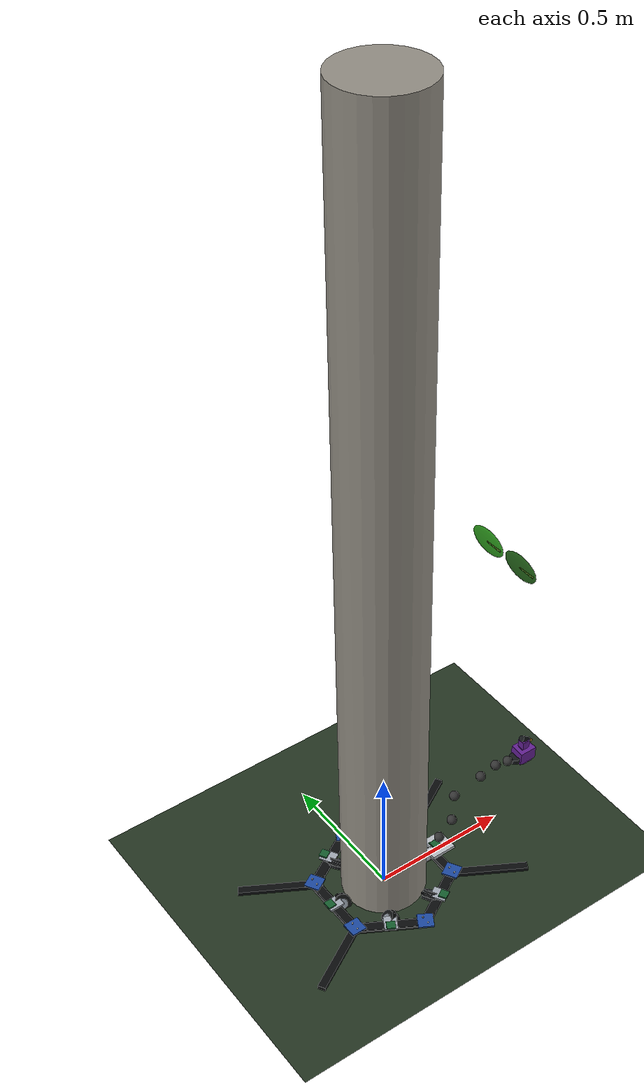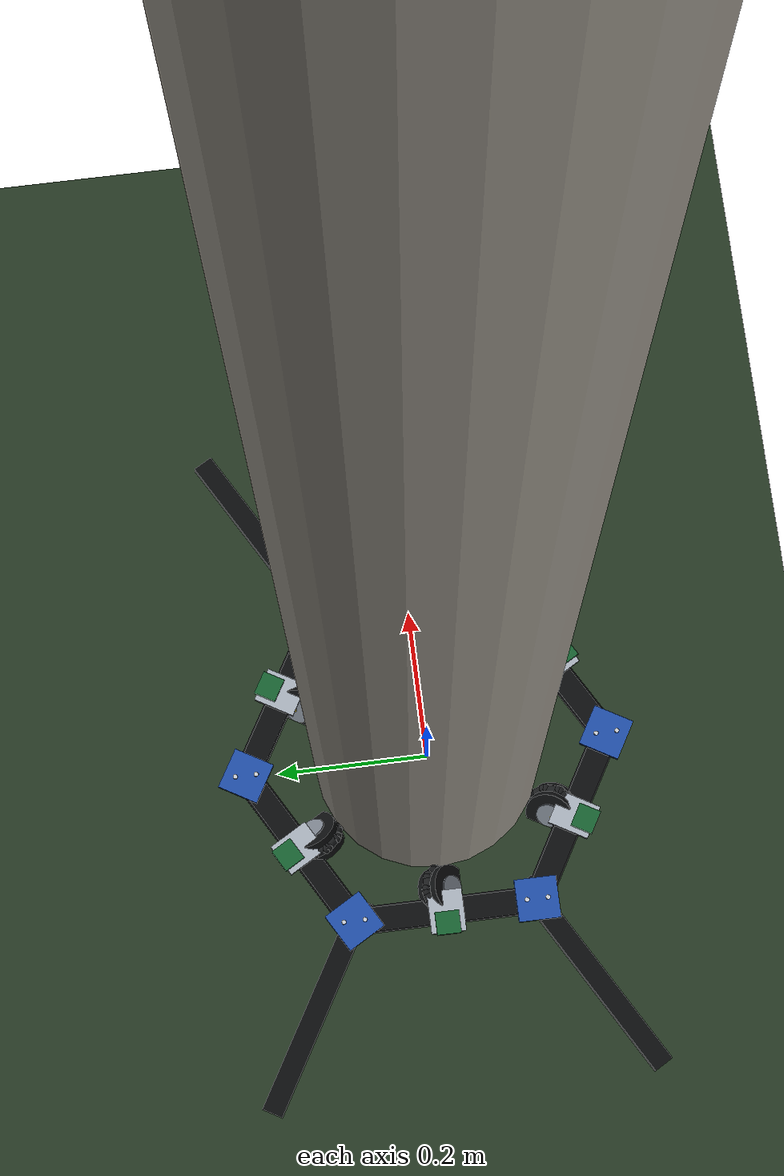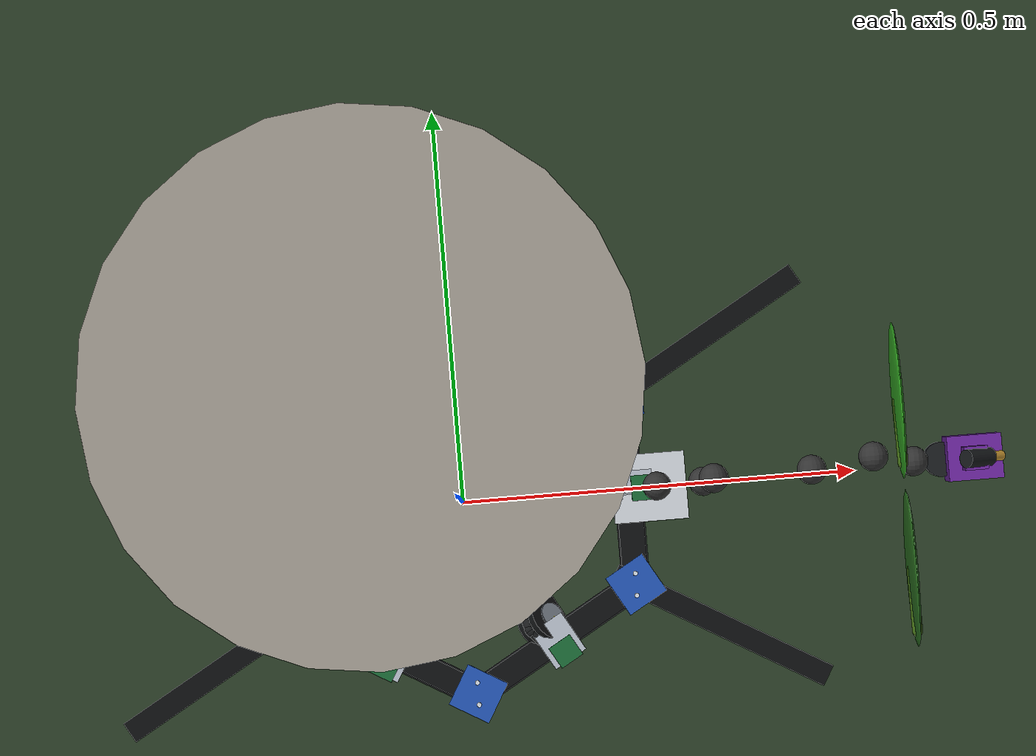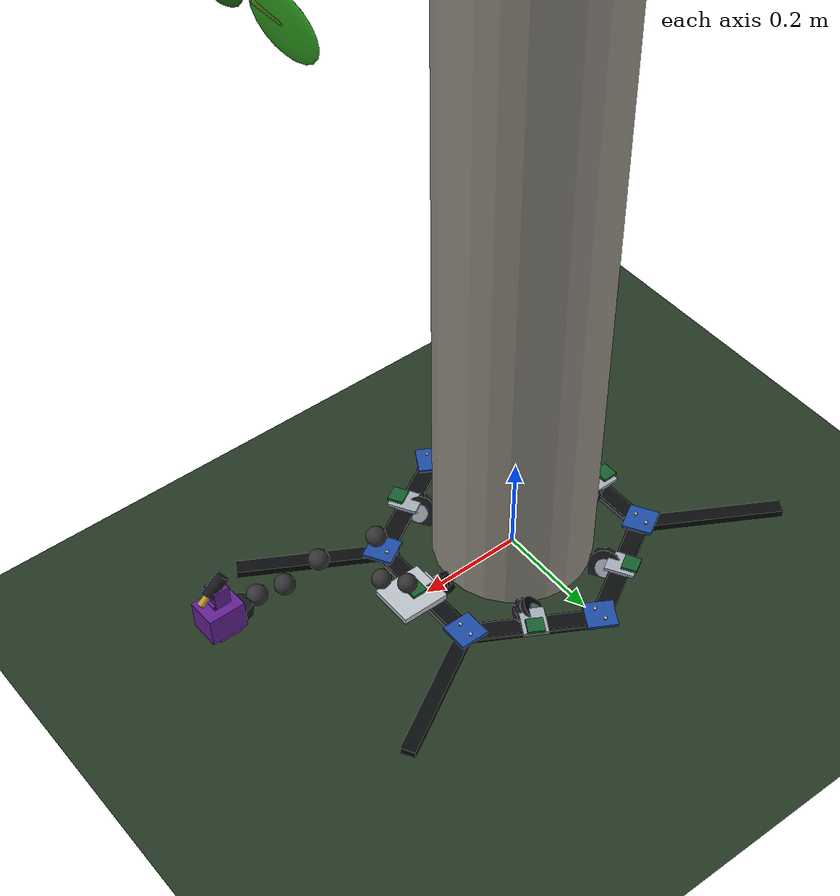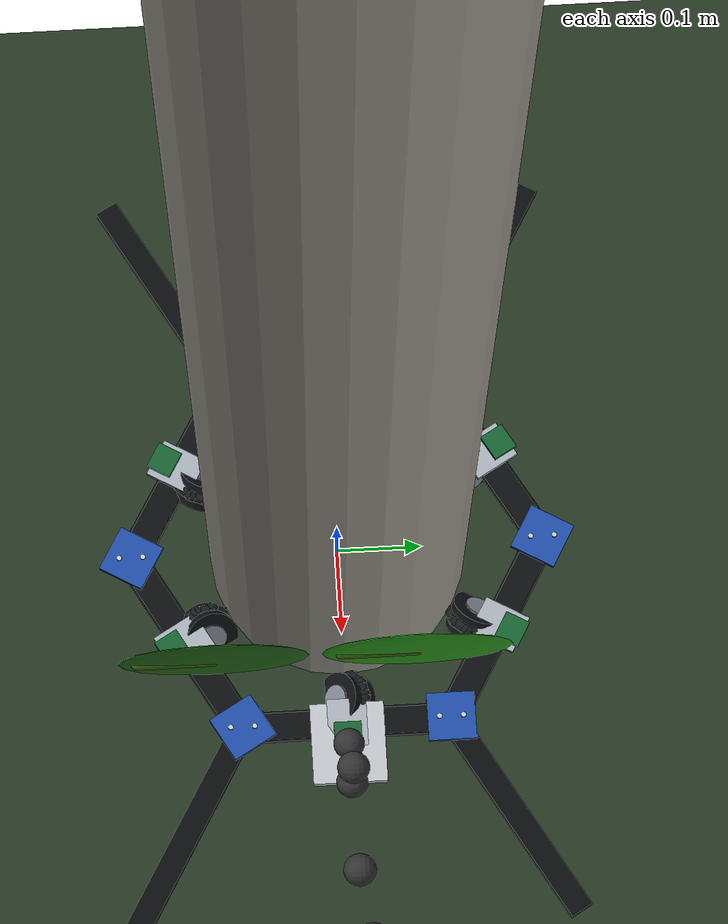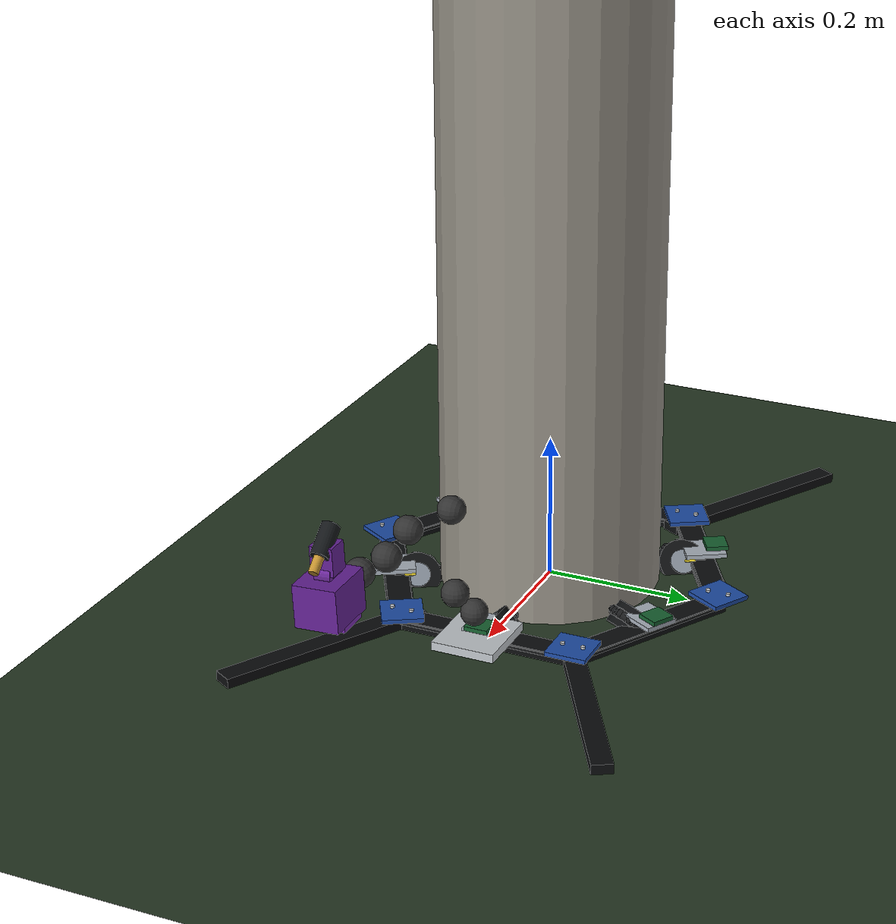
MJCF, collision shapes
<?xml version='1.0' encoding='utf-8'?>
<mujoco model="palmclimber_single_ring_so101_six_axis_extension">
  <!--SO101 CAD: Apache-2.0. Custom sixth positioning axis, scissors/nozzle, single-ring clamp and omni drive.-->
  <compiler angle="radian" autolimits="true" meshdir="so101/assets" />
  <option timestep="0.002" gravity="0 0 -9.81" integrator="implicitfast" iterations="80" />
  <visual>
    <global offwidth="1280" offheight="960" />
    <headlight diffuse=".65 .65 .65" ambient=".32 .32 .32" specular=".12 .12 .12" />
  </visual>
  <default>
    <default class="so101_new_calib">
      <joint damping="1" frictionloss="0.1" armature="0.005" />
      <position kp="50" />
      <default class="visual">
        <geom type="mesh" contype="0" conaffinity="0" group="2" />
      </default>
      <default class="collision">
        <geom group="3" />
      </default>
    </default>
  </default>
  <default>
    <default class="sts3215">
      <geom contype="0" conaffinity="0" />
      <joint damping="0.60" frictionloss="0.052" armature="0.028" />
      <position kp="998.22" kv="2.731" forcerange="-2.94 2.94" />
    </default>
    <default class="backlash">
      <joint damping="0.01" frictionloss="0" armature="0.01" limited="true" range="-0.008726646259971648 0.008726646259971648" />
    </default>
  </default>
  <default>
    <geom friction="0.7 0.005 0.0001" solref="0.012 1" solimp="0.95 0.99 0.002" />
  </default>
  <asset>
    <mesh file="waveshare_mounting_plate_so101_v2.stl" />
    <mesh file="sts3215_03a_v1.stl" />
    <mesh file="motor_holder_so101_base_v1.stl" />
    <mesh file="wrist_roll_follower_so101_v1.stl" />
    <mesh file="moving_jaw_so101_v1.stl" />
    <mesh file="base_motor_holder_so101_v1.stl" />
    <mesh file="upper_arm_so101_v1.stl" />
    <mesh file="wrist_roll_pitch_so101_v2.stl" />
    <mesh file="under_arm_so101_v1.stl" />
    <mesh file="rotation_pitch_so101_v1.stl" />
    <mesh file="motor_holder_so101_wrist_v1.stl" />
    <mesh file="sts3215_03a_no_horn_v1.stl" />
    <mesh file="base_so101_v2.stl" />
    <material name="base_motor_holder_so101_v1_material" rgba="0.68 0.72 0.76 1" />
    <material name="base_so101_v2_material" rgba="0.68 0.72 0.76 1" />
    <material name="sts3215_03a_v1_material" rgba="0.075 0.08 0.09 1" />
    <material name="waveshare_mounting_plate_so101_v2_material" rgba="0.68 0.72 0.76 1" />
    <material name="motor_holder_so101_base_v1_material" rgba="0.68 0.72 0.76 1" />
    <material name="rotation_pitch_so101_v1_material" rgba="0.68 0.72 0.76 1" />
    <material name="upper_arm_so101_v1_material" rgba="0.075 0.08 0.09 1" />
    <material name="under_arm_so101_v1_material" rgba="0.075 0.08 0.09 1" />
    <material name="motor_holder_so101_wrist_v1_material" rgba="0.68 0.72 0.76 1" />
    <material name="sts3215_03a_no_horn_v1_material" rgba="0.075 0.08 0.09 1" />
    <material name="wrist_roll_pitch_so101_v2_material" rgba="0.68 0.72 0.76 1" />
    <material name="wrist_roll_follower_so101_v1_material" rgba="0.68 0.72 0.76 1" />
    <material name="moving_jaw_so101_v1_material" rgba="0.68 0.72 0.76 1" />
    <texture type="skybox" builtin="gradient" rgb1=".70 .79 .86" rgb2=".96 .97 .98" width="512" height="1536" />
    <texture name="ground" type="2d" builtin="checker" width="128" height="128" rgb1="0.12 0.19 0.12" rgb2="0.18 0.25 0.16" />
    <material name="ground_mat" texture="ground" texrepeat="12 12" />
    <texture name="bark" type="2d" builtin="flat" mark="random" random="0.035" width="256" height="512" rgb1="0.58 0.56 0.52" markrgb="0.31 0.29 0.25" />
    <material name="bark_mat" texture="bark" texrepeat="7 3" specular="0.05" />
    <mesh name="custom_scissor_blade" vertex="0 -0.006 -0.002 0.08 -0.003 -0.002 0.091 0 -0.002 0.08 0.003 -0.002 0 0.009 -0.002 0 -0.006 0.002 0.08 -0.003 0.002 0.091 0 0.002 0.08 0.003 0.002 0 0.009 0.002" face="0 1 2 0 2 3 0 3 4 5 7 6 5 8 7 5 9 8 0 5 6 0 6 1 1 6 7 1 7 2 2 7 8 2 8 3 3 8 9 3 9 4 4 9 5 4 5 0" />
  </asset>
  <worldbody>
    <light pos="2 -3 4" dir="-0.2 0.4 -1" diffuse="0.9 0.9 0.85" ambient="0.20 0.20 0.20" />
    <light pos="-2 1 2" dir="1 -0.5 -0.2" diffuse="0.45 0.45 0.50" />
    <geom name="floor" type="plane" size="4 4 .1" material="ground_mat" contype="1" conaffinity="2" />
    <geom name="tree" type="cylinder" size=".15 1.5" pos="0 0 1.5" material="bark_mat" contype="1" conaffinity="2" />
    <camera name="overview" pos="1.65 -2.05 1.7" xyaxes=".779 .627 0 -.181 .225 .957" />
    <body name="leaf_target" mocap="true" pos=".44 0 1.3">
      <geom name="target_leaf" type="ellipsoid" size=".004 .075 .045" pos="0 .035 0" rgba=".17 .59 .11 1" contype="0" conaffinity="0" />
      <geom type="capsule" fromto="0 -.025 0 0 .035 0" size=".005" rgba=".24 .40 .07 1" contype="0" conaffinity="0" />
    </body>
    <body name="protected_leaf" mocap="true" pos=".44 -.16 1.3">
      <geom name="protected_leaf_geom" type="ellipsoid" size=".004 .075 .045" pos="0 .035 0" rgba=".14 .39 .10 1" contype="0" conaffinity="0" />
      <geom type="capsule" fromto="0 -.025 0 0 .035 0" size=".005" rgba=".24 .40 .07 1" contype="0" conaffinity="0" />
    </body>
    <body name="height_carriage">
      <joint name="base_height" type="slide" axis="0 0 1" range=".25 2.4" damping=".15" armature=".01" />
      <inertial pos="0 0 0" mass=".04" diaginertia=".001 .001 .001" />
      <body name="azimuth_carriage">
        <joint name="base_azimuth" type="hinge" axis="0 0 1" limited="false" damping=".08" frictionloss=".025" armature=".004" />
        <inertial pos="0 0 0" mass=".04" diaginertia=".001 .001 .002" />
        <body name="roll_support">
          <joint name="base_roll" type="hinge" axis="1 0 0" range="-.18 .18" damping="1.1" frictionloss="2.05" armature=".004" solreflimit=".025 1" solreffriction=".004 1" solimpfriction=".9999 .9999 .001" />
          <inertial pos="0 0 0" mass=".04" diaginertia=".002 .002 .002" />
          <body name="climber_root">
            <joint name="base_pitch" type="hinge" axis="0 1 0" range="-.18 .18" damping="1.1" frictionloss="2.05" armature=".004" solreflimit=".025 1" solreffriction=".004 1" solimpfriction=".9999 .9999 .001" />
            <inertial pos="-.025 0 0" mass="2.4" diaginertia=".060 .060 .10" />
            <geom name="frame_rail_0" type="box" size="0.1215 0.016 0.012" pos="0.105222087 0.18225 0" euler="0 0 2.61799388" rgba=".045 .05 .055 1" contype="0" conaffinity="0" />
            <geom type="box" size="0.1215 0.018 0.002" pos="0.105222087 0.18225 -0.009" euler="0 0 2.61799388" rgba=".08 .085 .09 1" contype="0" conaffinity="0" />
            <geom type="box" size="0.1215 0.018 0.002" pos="0.105222087 0.18225 0.009" euler="0 0 2.61799388" rgba=".08 .085 .09 1" contype="0" conaffinity="0" />
            <geom type="box" size=".028 .028 .003" pos="0.210444173 0.1215 0.016" euler="0 0 0" rgba=".12 .30 .65 1" contype="0" conaffinity="0" />
            <geom type="cylinder" size=".003 .002" pos="0.210444173 0.1075 0.02" rgba=".78 .80 .83 1" contype="0" conaffinity="0" />
            <geom type="cylinder" size=".003 .002" pos="0.210444173 0.1355 0.02" rgba=".78 .80 .83 1" contype="0" conaffinity="0" />
            <geom type="box" size=".15 .014 .012" pos="0.314367222 0.1815 0" euler="0 0 0.523598776" rgba=".04 .045 .05 1" contype="0" conaffinity="0" />
            <geom name="frame_rail_1" type="box" size="0.1215 0.016 0.012" pos="-0.105222087 0.18225 0" euler="0 0 -2.61799388" rgba=".045 .05 .055 1" contype="0" conaffinity="0" />
            <geom type="box" size="0.1215 0.018 0.002" pos="-0.105222087 0.18225 -0.009" euler="0 0 -2.61799388" rgba=".08 .085 .09 1" contype="0" conaffinity="0" />
            <geom type="box" size="0.1215 0.018 0.002" pos="-0.105222087 0.18225 0.009" euler="0 0 -2.61799388" rgba=".08 .085 .09 1" contype="0" conaffinity="0" />
            <geom type="box" size=".028 .028 .003" pos="1.48794586e-17 0.243 0.016" euler="0 0 1.04719755" rgba=".12 .30 .65 1" contype="0" conaffinity="0" />
            <geom type="cylinder" size=".003 .002" pos="1.48794586e-17 0.229 0.02" rgba=".78 .80 .83 1" contype="0" conaffinity="0" />
            <geom type="cylinder" size=".003 .002" pos="1.48794586e-17 0.257 0.02" rgba=".78 .80 .83 1" contype="0" conaffinity="0" />
            <geom name="frame_rail_2" type="box" size="0.1215 0.016 0.012" pos="-0.210444173 7.63278329e-17 0" euler="0 0 -1.57079633" rgba=".045 .05 .055 1" contype="0" conaffinity="0" />
            <geom type="box" size="0.1215 0.018 0.002" pos="-0.210444173 7.63278329e-17 -0.009" euler="0 0 -1.57079633" rgba=".08 .085 .09 1" contype="0" conaffinity="0" />
            <geom type="box" size="0.1215 0.018 0.002" pos="-0.210444173 7.63278329e-17 0.009" euler="0 0 -1.57079633" rgba=".08 .085 .09 1" contype="0" conaffinity="0" />
            <geom type="box" size=".028 .028 .003" pos="-0.210444173 0.1215 0.016" euler="0 0 2.0943951" rgba=".12 .30 .65 1" contype="0" conaffinity="0" />
            <geom type="cylinder" size=".003 .002" pos="-0.210444173 0.1075 0.02" rgba=".78 .80 .83 1" contype="0" conaffinity="0" />
            <geom type="cylinder" size=".003 .002" pos="-0.210444173 0.1355 0.02" rgba=".78 .80 .83 1" contype="0" conaffinity="0" />
            <geom type="box" size=".15 .014 .012" pos="-0.314367222 0.1815 0" euler="0 0 2.61799388" rgba=".04 .045 .05 1" contype="0" conaffinity="0" />
            <geom name="frame_rail_3" type="box" size="0.1215 0.016 0.012" pos="-0.105222087 -0.18225 0" euler="0 0 -0.523598776" rgba=".045 .05 .055 1" contype="0" conaffinity="0" />
            <geom type="box" size="0.1215 0.018 0.002" pos="-0.105222087 -0.18225 -0.009" euler="0 0 -0.523598776" rgba=".08 .085 .09 1" contype="0" conaffinity="0" />
            <geom type="box" size="0.1215 0.018 0.002" pos="-0.105222087 -0.18225 0.009" euler="0 0 -0.523598776" rgba=".08 .085 .09 1" contype="0" conaffinity="0" />
            <geom type="box" size=".028 .028 .003" pos="-0.210444173 -0.1215 0.016" euler="0 0 3.14159265" rgba=".12 .30 .65 1" contype="0" conaffinity="0" />
            <geom type="cylinder" size=".003 .002" pos="-0.210444173 -0.1355 0.02" rgba=".78 .80 .83 1" contype="0" conaffinity="0" />
            <geom type="cylinder" size=".003 .002" pos="-0.210444173 -0.1075 0.02" rgba=".78 .80 .83 1" contype="0" conaffinity="0" />
            <geom type="box" size=".15 .014 .012" pos="-0.314367222 -0.1815 0" euler="0 0 3.66519143" rgba=".04 .045 .05 1" contype="0" conaffinity="0" />
            <geom name="frame_rail_4" type="box" size="0.1215 0.016 0.012" pos="0.105222087 -0.18225 0" euler="0 0 0.523598776" rgba=".045 .05 .055 1" contype="0" conaffinity="0" />
            <geom type="box" size="0.1215 0.018 0.002" pos="0.105222087 -0.18225 -0.009" euler="0 0 0.523598776" rgba=".08 .085 .09 1" contype="0" conaffinity="0" />
            <geom type="box" size="0.1215 0.018 0.002" pos="0.105222087 -0.18225 0.009" euler="0 0 0.523598776" rgba=".08 .085 .09 1" contype="0" conaffinity="0" />
            <geom type="box" size=".028 .028 .003" pos="-4.46383758e-17 -0.243 0.016" euler="0 0 4.1887902" rgba=".12 .30 .65 1" contype="0" conaffinity="0" />
            <geom type="cylinder" size=".003 .002" pos="-4.46383758e-17 -0.257 0.02" rgba=".78 .80 .83 1" contype="0" conaffinity="0" />
            <geom type="cylinder" size=".003 .002" pos="-4.46383758e-17 -0.229 0.02" rgba=".78 .80 .83 1" contype="0" conaffinity="0" />
            <geom name="frame_rail_5" type="box" size="0.1215 0.016 0.012" pos="0.210444173 3.46944695e-17 0" euler="0 0 1.57079633" rgba=".045 .05 .055 1" contype="0" conaffinity="0" />
            <geom type="box" size="0.1215 0.018 0.002" pos="0.210444173 3.46944695e-17 -0.009" euler="0 0 1.57079633" rgba=".08 .085 .09 1" contype="0" conaffinity="0" />
            <geom type="box" size="0.1215 0.018 0.002" pos="0.210444173 3.46944695e-17 0.009" euler="0 0 1.57079633" rgba=".08 .085 .09 1" contype="0" conaffinity="0" />
            <geom type="box" size=".028 .028 .003" pos="0.210444173 -0.1215 0.016" euler="0 0 5.23598776" rgba=".12 .30 .65 1" contype="0" conaffinity="0" />
            <geom type="cylinder" size=".003 .002" pos="0.210444173 -0.1355 0.02" rgba=".78 .80 .83 1" contype="0" conaffinity="0" />
            <geom type="cylinder" size=".003 .002" pos="0.210444173 -0.1075 0.02" rgba=".78 .80 .83 1" contype="0" conaffinity="0" />
            <geom type="box" size=".15 .014 .012" pos="0.314367222 -0.1815 0" euler="0 0 5.75958653" rgba=".04 .045 .05 1" contype="0" conaffinity="0" />
            <body name="wheel1" pos="0.182 0 0">
              <joint name="wheel1_spin" type="hinge" axis="0 -0.707106781 0.707106781" limited="false" damping=".004" armature=".0005" />
              <inertial pos="0 0 0" mass=".065" diaginertia=".00005 .00005 .00005" />
              <geom type="cylinder" size=".032 .016" quat="0.923879533 0.382683432 0 0" rgba=".05 .055 .06 1" contype="0" conaffinity="0" />
              <geom type="cylinder" size=".017 .018" quat="0.923879533 0.382683432 0 0" rgba=".50 .53 .57 1" contype="0" conaffinity="0" />
              <geom type="capsule" fromto="0.029 -0.00777817459 -0.00777817459 0.029 0.00777817459 0.00777817459" size=".007" rgba=".10 .105 .11 1" contype="0" conaffinity="0" />
              <geom type="capsule" fromto="0.0299271306 0.00576050576 0.00576050576 0.0169958551 0.0183458566 0.0183458566" size=".007" rgba=".10 .105 .11 1" contype="0" conaffinity="0" />
              <geom type="capsule" fromto="0.0194231145 0.0170988687 0.0170988687 -0.00150012884 0.021906045 0.021906045" size=".007" rgba=".10 .105 .11 1" contype="0" conaffinity="0" />
              <geom type="capsule" fromto="0.00150012884 0.021906045 0.021906045 -0.0194231145 0.0170988687 0.0170988687" size=".007" rgba=".10 .105 .11 1" contype="0" conaffinity="0" />
              <geom type="capsule" fromto="-0.0169958551 0.0183458566 0.0183458566 -0.0299271306 0.00576050576 0.00576050576" size=".007" rgba=".10 .105 .11 1" contype="0" conaffinity="0" />
              <geom type="capsule" fromto="-0.029 0.00777817459 0.00777817459 -0.029 -0.00777817459 -0.00777817459" size=".007" rgba=".10 .105 .11 1" contype="0" conaffinity="0" />
              <geom type="capsule" fromto="-0.0299271306 -0.00576050576 -0.00576050576 -0.0169958551 -0.0183458566 -0.0183458566" size=".007" rgba=".10 .105 .11 1" contype="0" conaffinity="0" />
              <geom type="capsule" fromto="-0.0194231145 -0.0170988687 -0.0170988687 0.00150012884 -0.021906045 -0.021906045" size=".007" rgba=".10 .105 .11 1" contype="0" conaffinity="0" />
              <geom type="capsule" fromto="-0.00150012884 -0.021906045 -0.021906045 0.0194231145 -0.0170988687 -0.0170988687" size=".007" rgba=".10 .105 .11 1" contype="0" conaffinity="0" />
              <geom type="capsule" fromto="0.0169958551 -0.0183458566 -0.0183458566 0.0299271306 -0.00576050576 -0.00576050576" size=".007" rgba=".10 .105 .11 1" contype="0" conaffinity="0" />
              <geom name="wheel1_rotation_mark_-1" type="capsule" fromto="0.004 0.0134350288 -0.0134350288 0.016 0.0134350288 -0.0134350288" size=".0018" rgba=".92 .83 .18 1" contype="0" conaffinity="0" />
              <geom name="wheel1_rotation_mark_1" type="capsule" fromto="0.004 -0.0134350288 0.0134350288 0.016 -0.0134350288 0.0134350288" size=".0018" rgba=".92 .83 .18 1" contype="0" conaffinity="0" />
            </body>
            <site name="traction1" pos="0.15 0 0" size=".002" rgba="0 0 0 0" />
            <geom type="box" size=".028 .023 .003" pos="0.213 0 0.023" euler="0 0 0" rgba=".66 .69 .73 1" contype="0" conaffinity="0" />
            <geom type="box" size=".015 .016 .003" pos="0.229 0 0.031" euler="0 0 0" rgba=".09 .38 .19 1" contype="0" conaffinity="0" />
            <body name="wheel2" pos="0.091 0.157616623 0">
              <joint name="wheel2_spin" type="hinge" axis="0.612372436 -0.353553391 -0.707106781" limited="false" damping=".004" armature=".0005" />
              <inertial pos="0 0 0" mass=".065" diaginertia=".00005 .00005 .00005" />
              <geom type="cylinder" size=".032 .016" quat="0.382683432 0.461939766 0.800103145 0" rgba=".05 .055 .06 1" contype="0" conaffinity="0" />
              <geom type="cylinder" size=".017 .018" quat="0.382683432 0.461939766 0.800103145 0" rgba=".50 .53 .57 1" contype="0" conaffinity="0" />
              <geom type="capsule" fromto="0.00776390321 0.029003824 -0.00777817459 0.0212360968 0.0212256494 0.00777817459" size=".007" rgba=".10 .105 .11 1" contype="0" conaffinity="0" />
              <geom type="capsule" fromto="0.0199523096 0.0230374025 0.00576050576 0.0243859054 0.00554591393 0.0183458566" size=".007" rgba=".10 .105 .11 1" contype="0" conaffinity="0" />
              <geom type="capsule" fromto="0.0245196119 0.00827147624 0.0170988687 0.018221127 -0.0122521722 0.021906045" size=".007" rgba=".10 .105 .11 1" contype="0" conaffinity="0" />
              <geom type="capsule" fromto="0.0197212559 -0.0096538728 0.021906045 0.00509649742 -0.0253703449 0.0170988687" size=".007" rgba=".10 .105 .11 1" contype="0" conaffinity="0" />
              <geom type="capsule" fromto="0.00739005036 -0.0238917706 0.0183458566 -0.00997482098 -0.0287979083 0.00576050576" size=".007" rgba=".10 .105 .11 1" contype="0" conaffinity="0" />
              <geom type="capsule" fromto="-0.00776390321 -0.029003824 0.00777817459 -0.0212360968 -0.0212256494 -0.00777817459" size=".007" rgba=".10 .105 .11 1" contype="0" conaffinity="0" />
              <geom type="capsule" fromto="-0.0199523096 -0.0230374025 -0.00576050576 -0.0243859054 -0.00554591393 -0.0183458566" size=".007" rgba=".10 .105 .11 1" contype="0" conaffinity="0" />
              <geom type="capsule" fromto="-0.0245196119 -0.00827147624 -0.0170988687 -0.018221127 0.0122521722 -0.021906045" size=".007" rgba=".10 .105 .11 1" contype="0" conaffinity="0" />
              <geom type="capsule" fromto="-0.0197212559 0.0096538728 -0.021906045 -0.00509649742 0.0253703449 -0.0170988687" size=".007" rgba=".10 .105 .11 1" contype="0" conaffinity="0" />
              <geom type="capsule" fromto="-0.00739005036 0.0238917706 -0.0183458566 0.00997482098 0.0287979083 -0.00576050576" size=".007" rgba=".10 .105 .11 1" contype="0" conaffinity="0" />
              <geom name="wheel2_rotation_mark_-1" type="capsule" fromto="-0.00963507628 0.010181616 0.0134350288 -0.00363507628 0.0205739209 0.0134350288" size=".0018" rgba=".92 .83 .18 1" contype="0" conaffinity="0" />
              <geom name="wheel2_rotation_mark_1" type="capsule" fromto="0.0136350763 -0.00325341281 -0.0134350288 0.0196350763 0.00713889204 -0.0134350288" size=".0018" rgba=".92 .83 .18 1" contype="0" conaffinity="0" />
            </body>
            <site name="traction2" pos="0.075 0.129903811 0" size=".002" rgba="0 0 0 0" />
            <geom type="box" size=".028 .023 .003" pos="0.1065 0.184463411 0.023" euler="0 0 1.04719755" rgba=".66 .69 .73 1" contype="0" conaffinity="0" />
            <geom type="box" size=".015 .016 .003" pos="0.1145 0.198319817 0.031" euler="0 0 1.04719755" rgba=".09 .38 .19 1" contype="0" conaffinity="0" />
            <body name="wheel3" pos="-0.091 0.157616623 0">
              <joint name="wheel3_spin" type="hinge" axis="0.612372436 0.353553391 0.707106781" limited="false" damping=".004" armature=".0005" />
              <inertial pos="0 0 0" mass=".065" diaginertia=".00005 .00005 .00005" />
              <geom type="cylinder" size=".032 .016" quat="0.923879533 -0.191341716 0.331413574 0" rgba=".05 .055 .06 1" contype="0" conaffinity="0" />
              <geom type="cylinder" size=".017 .018" quat="0.923879533 -0.191341716 0.331413574 0" rgba=".50 .53 .57 1" contype="0" conaffinity="0" />
              <geom type="capsule" fromto="-0.00776390321 0.029003824 -0.00777817459 -0.0212360968 0.0212256494 0.00777817459" size=".007" rgba=".10 .105 .11 1" contype="0" conaffinity="0" />
              <geom type="capsule" fromto="-0.0199523096 0.0230374025 0.00576050576 -0.0243859054 0.00554591393 0.0183458566" size=".007" rgba=".10 .105 .11 1" contype="0" conaffinity="0" />
              <geom type="capsule" fromto="-0.0245196119 0.00827147624 0.0170988687 -0.018221127 -0.0122521722 0.021906045" size=".007" rgba=".10 .105 .11 1" contype="0" conaffinity="0" />
              <geom type="capsule" fromto="-0.0197212559 -0.0096538728 0.021906045 -0.00509649742 -0.0253703449 0.0170988687" size=".007" rgba=".10 .105 .11 1" contype="0" conaffinity="0" />
              <geom type="capsule" fromto="-0.00739005036 -0.0238917706 0.0183458566 0.00997482098 -0.0287979083 0.00576050576" size=".007" rgba=".10 .105 .11 1" contype="0" conaffinity="0" />
              <geom type="capsule" fromto="0.00776390321 -0.029003824 0.00777817459 0.0212360968 -0.0212256494 -0.00777817459" size=".007" rgba=".10 .105 .11 1" contype="0" conaffinity="0" />
              <geom type="capsule" fromto="0.0199523096 -0.0230374025 -0.00576050576 0.0243859054 -0.00554591393 -0.0183458566" size=".007" rgba=".10 .105 .11 1" contype="0" conaffinity="0" />
              <geom type="capsule" fromto="0.0245196119 -0.00827147624 -0.0170988687 0.018221127 0.0122521722 -0.021906045" size=".007" rgba=".10 .105 .11 1" contype="0" conaffinity="0" />
              <geom type="capsule" fromto="0.0197212559 0.0096538728 -0.021906045 0.00509649742 0.0253703449 -0.0170988687" size=".007" rgba=".10 .105 .11 1" contype="0" conaffinity="0" />
              <geom type="capsule" fromto="0.00739005036 0.0238917706 -0.0183458566 -0.00997482098 0.0287979083 -0.00576050576" size=".007" rgba=".10 .105 .11 1" contype="0" conaffinity="0" />
              <geom name="wheel3_rotation_mark_-1" type="capsule" fromto="-0.0136350763 -0.00325341281 -0.0134350288 -0.0196350763 0.00713889204 -0.0134350288" size=".0018" rgba=".92 .83 .18 1" contype="0" conaffinity="0" />
              <geom name="wheel3_rotation_mark_1" type="capsule" fromto="0.00963507628 0.010181616 0.0134350288 0.00363507628 0.0205739209 0.0134350288" size=".0018" rgba=".92 .83 .18 1" contype="0" conaffinity="0" />
            </body>
            <site name="traction3" pos="-0.075 0.129903811 0" size=".002" rgba="0 0 0 0" />
            <geom type="box" size=".028 .023 .003" pos="-0.1065 0.184463411 0.023" euler="0 0 2.0943951" rgba=".66 .69 .73 1" contype="0" conaffinity="0" />
            <geom type="box" size=".015 .016 .003" pos="-0.1145 0.198319817 0.031" euler="0 0 2.0943951" rgba=".09 .38 .19 1" contype="0" conaffinity="0" />
            <body name="wheel4" pos="-0.182 2.22885717e-17 0">
              <joint name="wheel4_spin" type="hinge" axis="8.65956056e-17 0.707106781 -0.707106781" limited="false" damping=".004" armature=".0005" />
              <inertial pos="0 0 0" mass=".065" diaginertia=".00005 .00005 .00005" />
              <geom type="cylinder" size=".032 .016" quat="0.382683432 -0.923879533 1.13142611e-16 0" rgba=".05 .055 .06 1" contype="0" conaffinity="0" />
              <geom type="cylinder" size=".017 .018" quat="0.382683432 -0.923879533 1.13142611e-16 0" rgba=".50 .53 .57 1" contype="0" conaffinity="0" />
              <geom type="capsule" fromto="-0.029 -0.00777817459 -0.00777817459 -0.029 0.00777817459 0.00777817459" size=".007" rgba=".10 .105 .11 1" contype="0" conaffinity="0" />
              <geom type="capsule" fromto="-0.0299271306 0.00576050576 0.00576050576 -0.0169958551 0.0183458566 0.0183458566" size=".007" rgba=".10 .105 .11 1" contype="0" conaffinity="0" />
              <geom type="capsule" fromto="-0.0194231145 0.0170988687 0.0170988687 0.00150012884 0.021906045 0.021906045" size=".007" rgba=".10 .105 .11 1" contype="0" conaffinity="0" />
              <geom type="capsule" fromto="-0.00150012884 0.021906045 0.021906045 0.0194231145 0.0170988687 0.0170988687" size=".007" rgba=".10 .105 .11 1" contype="0" conaffinity="0" />
              <geom type="capsule" fromto="0.0169958551 0.0183458566 0.0183458566 0.0299271306 0.00576050576 0.00576050576" size=".007" rgba=".10 .105 .11 1" contype="0" conaffinity="0" />
              <geom type="capsule" fromto="0.029 0.00777817459 0.00777817459 0.029 -0.00777817459 -0.00777817459" size=".007" rgba=".10 .105 .11 1" contype="0" conaffinity="0" />
              <geom type="capsule" fromto="0.0299271306 -0.00576050576 -0.00576050576 0.0169958551 -0.0183458566 -0.0183458566" size=".007" rgba=".10 .105 .11 1" contype="0" conaffinity="0" />
              <geom type="capsule" fromto="0.0194231145 -0.0170988687 -0.0170988687 -0.00150012884 -0.021906045 -0.021906045" size=".007" rgba=".10 .105 .11 1" contype="0" conaffinity="0" />
              <geom type="capsule" fromto="0.00150012884 -0.021906045 -0.021906045 -0.0194231145 -0.0170988687 -0.0170988687" size=".007" rgba=".10 .105 .11 1" contype="0" conaffinity="0" />
              <geom type="capsule" fromto="-0.0169958551 -0.0183458566 -0.0183458566 -0.0299271306 -0.00576050576 -0.00576050576" size=".007" rgba=".10 .105 .11 1" contype="0" conaffinity="0" />
              <geom name="wheel4_rotation_mark_-1" type="capsule" fromto="-0.004 -0.0134350288 0.0134350288 -0.016 -0.0134350288 0.0134350288" size=".0018" rgba=".92 .83 .18 1" contype="0" conaffinity="0" />
              <geom name="wheel4_rotation_mark_1" type="capsule" fromto="-0.004 0.0134350288 -0.0134350288 -0.016 0.0134350288 -0.0134350288" size=".0018" rgba=".92 .83 .18 1" contype="0" conaffinity="0" />
            </body>
            <site name="traction4" pos="-0.15 1.8369702e-17 0" size=".002" rgba="0 0 0 0" />
            <geom type="box" size=".028 .023 .003" pos="-0.213 2.60849768e-17 0.023" euler="0 0 3.14159265" rgba=".66 .69 .73 1" contype="0" conaffinity="0" />
            <geom type="box" size=".015 .016 .003" pos="-0.229 2.80444117e-17 0.031" euler="0 0 3.14159265" rgba=".09 .38 .19 1" contype="0" conaffinity="0" />
            <body name="wheel5" pos="-0.091 -0.157616623 0">
              <joint name="wheel5_spin" type="hinge" axis="-0.612372436 0.353553391 0.707106781" limited="false" damping=".004" armature=".0005" />
              <inertial pos="0 0 0" mass=".065" diaginertia=".00005 .00005 .00005" />
              <geom type="cylinder" size=".032 .016" quat="0.923879533 -0.191341716 -0.331413574 0" rgba=".05 .055 .06 1" contype="0" conaffinity="0" />
              <geom type="cylinder" size=".017 .018" quat="0.923879533 -0.191341716 -0.331413574 0" rgba=".50 .53 .57 1" contype="0" conaffinity="0" />
              <geom type="capsule" fromto="-0.0212360968 -0.0212256494 -0.00777817459 -0.00776390321 -0.029003824 0.00777817459" size=".007" rgba=".10 .105 .11 1" contype="0" conaffinity="0" />
              <geom type="capsule" fromto="-0.00997482098 -0.0287979083 0.00576050576 0.00739005036 -0.0238917706 0.0183458566" size=".007" rgba=".10 .105 .11 1" contype="0" conaffinity="0" />
              <geom type="capsule" fromto="0.00509649742 -0.0253703449 0.0170988687 0.0197212559 -0.0096538728 0.021906045" size=".007" rgba=".10 .105 .11 1" contype="0" conaffinity="0" />
              <geom type="capsule" fromto="0.018221127 -0.0122521722 0.021906045 0.0245196119 0.00827147624 0.0170988687" size=".007" rgba=".10 .105 .11 1" contype="0" conaffinity="0" />
              <geom type="capsule" fromto="0.0243859054 0.00554591393 0.0183458566 0.0199523096 0.0230374025 0.00576050576" size=".007" rgba=".10 .105 .11 1" contype="0" conaffinity="0" />
              <geom type="capsule" fromto="0.0212360968 0.0212256494 0.00777817459 0.00776390321 0.029003824 -0.00777817459" size=".007" rgba=".10 .105 .11 1" contype="0" conaffinity="0" />
              <geom type="capsule" fromto="0.00997482098 0.0287979083 -0.00576050576 -0.00739005036 0.0238917706 -0.0183458566" size=".007" rgba=".10 .105 .11 1" contype="0" conaffinity="0" />
              <geom type="capsule" fromto="-0.00509649742 0.0253703449 -0.0170988687 -0.0197212559 0.0096538728 -0.021906045" size=".007" rgba=".10 .105 .11 1" contype="0" conaffinity="0" />
              <geom type="capsule" fromto="-0.018221127 0.0122521722 -0.021906045 -0.0245196119 -0.00827147624 -0.0170988687" size=".007" rgba=".10 .105 .11 1" contype="0" conaffinity="0" />
              <geom type="capsule" fromto="-0.0243859054 -0.00554591393 -0.0183458566 -0.0199523096 -0.0230374025 -0.00576050576" size=".007" rgba=".10 .105 .11 1" contype="0" conaffinity="0" />
              <geom name="wheel5_rotation_mark_-1" type="capsule" fromto="0.00963507628 -0.010181616 -0.0134350288 0.00363507628 -0.0205739209 -0.0134350288" size=".0018" rgba=".92 .83 .18 1" contype="0" conaffinity="0" />
              <geom name="wheel5_rotation_mark_1" type="capsule" fromto="-0.0136350763 0.00325341281 0.0134350288 -0.0196350763 -0.00713889204 0.0134350288" size=".0018" rgba=".92 .83 .18 1" contype="0" conaffinity="0" />
            </body>
            <site name="traction5" pos="-0.075 -0.129903811 0" size=".002" rgba="0 0 0 0" />
            <geom type="box" size=".028 .023 .003" pos="-0.1065 -0.184463411 0.023" euler="0 0 4.1887902" rgba=".66 .69 .73 1" contype="0" conaffinity="0" />
            <geom type="box" size=".015 .016 .003" pos="-0.1145 -0.198319817 0.031" euler="0 0 4.1887902" rgba=".09 .38 .19 1" contype="0" conaffinity="0" />
            <body name="wheel6" pos="0.091 -0.157616623 0">
              <joint name="wheel6_spin" type="hinge" axis="-0.612372436 -0.353553391 -0.707106781" limited="false" damping=".004" armature=".0005" />
              <inertial pos="0 0 0" mass=".065" diaginertia=".00005 .00005 .00005" />
              <geom type="cylinder" size=".032 .016" quat="0.382683432 0.461939766 -0.800103145 0" rgba=".05 .055 .06 1" contype="0" conaffinity="0" />
              <geom type="cylinder" size=".017 .018" quat="0.382683432 0.461939766 -0.800103145 0" rgba=".50 .53 .57 1" contype="0" conaffinity="0" />
              <geom type="capsule" fromto="0.0212360968 -0.0212256494 -0.00777817459 0.00776390321 -0.029003824 0.00777817459" size=".007" rgba=".10 .105 .11 1" contype="0" conaffinity="0" />
              <geom type="capsule" fromto="0.00997482098 -0.0287979083 0.00576050576 -0.00739005036 -0.0238917706 0.0183458566" size=".007" rgba=".10 .105 .11 1" contype="0" conaffinity="0" />
              <geom type="capsule" fromto="-0.00509649742 -0.0253703449 0.0170988687 -0.0197212559 -0.0096538728 0.021906045" size=".007" rgba=".10 .105 .11 1" contype="0" conaffinity="0" />
              <geom type="capsule" fromto="-0.018221127 -0.0122521722 0.021906045 -0.0245196119 0.00827147624 0.0170988687" size=".007" rgba=".10 .105 .11 1" contype="0" conaffinity="0" />
              <geom type="capsule" fromto="-0.0243859054 0.00554591393 0.0183458566 -0.0199523096 0.0230374025 0.00576050576" size=".007" rgba=".10 .105 .11 1" contype="0" conaffinity="0" />
              <geom type="capsule" fromto="-0.0212360968 0.0212256494 0.00777817459 -0.00776390321 0.029003824 -0.00777817459" size=".007" rgba=".10 .105 .11 1" contype="0" conaffinity="0" />
              <geom type="capsule" fromto="-0.00997482098 0.0287979083 -0.00576050576 0.00739005036 0.0238917706 -0.0183458566" size=".007" rgba=".10 .105 .11 1" contype="0" conaffinity="0" />
              <geom type="capsule" fromto="0.00509649742 0.0253703449 -0.0170988687 0.0197212559 0.0096538728 -0.021906045" size=".007" rgba=".10 .105 .11 1" contype="0" conaffinity="0" />
              <geom type="capsule" fromto="0.018221127 0.0122521722 -0.021906045 0.0245196119 -0.00827147624 -0.0170988687" size=".007" rgba=".10 .105 .11 1" contype="0" conaffinity="0" />
              <geom type="capsule" fromto="0.0243859054 -0.00554591393 -0.0183458566 0.0199523096 -0.0230374025 -0.00576050576" size=".007" rgba=".10 .105 .11 1" contype="0" conaffinity="0" />
              <geom name="wheel6_rotation_mark_-1" type="capsule" fromto="0.0136350763 0.00325341281 0.0134350288 0.0196350763 -0.00713889204 0.0134350288" size=".0018" rgba=".92 .83 .18 1" contype="0" conaffinity="0" />
              <geom name="wheel6_rotation_mark_1" type="capsule" fromto="-0.00963507628 -0.010181616 -0.0134350288 -0.00363507628 -0.0205739209 -0.0134350288" size=".0018" rgba=".92 .83 .18 1" contype="0" conaffinity="0" />
            </body>
            <site name="traction6" pos="0.075 -0.129903811 0" size=".002" rgba="0 0 0 0" />
            <geom type="box" size=".028 .023 .003" pos="0.1065 -0.184463411 0.023" euler="0 0 5.23598776" rgba=".66 .69 .73 1" contype="0" conaffinity="0" />
            <geom type="box" size=".015 .016 .003" pos="0.1145 -0.198319817 0.031" euler="0 0 5.23598776" rgba=".09 .38 .19 1" contype="0" conaffinity="0" />
            <geom name="arm_mount_plate" type="box" size=".047 .043 .006" pos=".237 0 .020" rgba=".75 .77 .79 1" contype="0" conaffinity="0" />
            <body name="so101_base" pos=".232 0 .026" quat="1 0 0 0" childclass="so101_new_calib">
              <inertial pos="0.0137179 -5.19711e-05 0.0334843" mass="0.147" fullinertia="0.000114686 0.000136117 0.000130364 -4.59787e-07 4.97151e-06 9.75275e-08" />
              <geom type="mesh" class="visual" pos="-0.00636471 -9.94414e-05 -0.0024" quat="0.5 0.5 0.5 0.5" mesh="base_motor_holder_so101_v1" material="base_motor_holder_so101_v1_material" />
              <geom type="mesh" class="visual" pos="-0.00636471 -8.97657e-09 -0.0024" quat="0.5 0.5 0.5 0.5" mesh="base_so101_v2" material="base_so101_v2_material" />
              <geom type="mesh" class="visual" pos="0.0263353 -8.97657e-09 0.0437" quat="1 -2.85511e-16 -9.64433e-17 6.12908e-16" mesh="sts3215_03a_v1" material="sts3215_03a_v1_material" />
              <geom type="mesh" class="visual" pos="-0.0309827 -0.000199441 0.0474" quat="0.5 0.5 0.5 0.5" mesh="waveshare_mounting_plate_so101_v2" material="waveshare_mounting_plate_so101_v2_material" />
              <site group="3" name="baseframe" pos="8.67362e-19 9.55596e-18 3.46945e-18" quat="1 -8.17396e-19 3.78392e-17 2.22045e-16" />
              <body name="shoulder" pos="0.0388353 -8.97657e-09 0.0624" quat="3.56167e-16 1.22818e-15 -1 -4.14635e-16">
                <joint axis="0 0 1" name="shoulder_yaw" type="hinge" range="-1.9198621771937616 1.9198621771937634" class="sts3215" />
                <inertial pos="-0.0307604 -1.66727e-05 -0.0252713" mass="0.100006" fullinertia="8.3759e-05 8.10403e-05 2.39783e-05 7.55525e-08 -1.16342e-06 1.54663e-07" />
                <geom type="mesh" class="visual" pos="-0.0303992 0.000422241 -0.0417" quat="0.5 0.5 0.5 -0.5" mesh="sts3215_03a_v1" material="sts3215_03a_v1_material" />
                <geom type="mesh" class="visual" pos="-0.0675992 -0.000177759 0.0158499" quat="0.5 0.5 -0.5 0.5" mesh="motor_holder_so101_base_v1" material="motor_holder_so101_base_v1_material" />
                <geom type="mesh" class="visual" pos="0.0122008 2.22413e-05 0.0464" quat="0.707107 -0.707107 -0 8.3163e-34" mesh="rotation_pitch_so101_v1" material="rotation_pitch_so101_v1_material" />
                <body name="upper_arm" pos="-0.0303992 -0.0182778 -0.0542" quat="0.5 -0.5 -0.5 -0.5">
                  <joint axis="0 0 1" name="shoulder_pitch" type="hinge" range="-1.7453292519943224 1.7453292519943366" class="sts3215" />
                  <inertial pos="-0.0898471 -0.00838224 0.0184089" mass="0.103" fullinertia="4.08002e-05 0.000147318 0.000142487 -1.97819e-05 -4.03016e-08 8.97326e-09" />
                  <geom type="mesh" class="visual" pos="-0.11257 -0.0155 0.0187" quat="4.56308e-16 -0.707107 0.707107 -1.37383e-16" mesh="sts3215_03a_v1" material="sts3215_03a_v1_material" />
                  <geom type="mesh" class="visual" pos="-0.065085 0.012 0.0182" quat="0 1 0 0" mesh="upper_arm_so101_v1" material="upper_arm_so101_v1_material" />
                  <body name="lower_arm" pos="-0.11257 -0.028 1.73763e-16" quat="0.707107 -5.98613e-17 -2.58051e-17 0.707107">
                    <joint axis="0 0 1" name="elbow_pitch" type="hinge" range="-1.69 1.69" class="sts3215" />
                    <inertial pos="-0.0980701 0.00324376 0.0182831" mass="0.104" fullinertia="2.87438e-05 0.000159844 0.00014529 7.41152e-06 1.26409e-06 -4.90188e-08" />
                    <geom type="mesh" class="visual" pos="-0.0648499 -0.032 0.0182" quat="0 1 0 0" mesh="under_arm_so101_v1" material="under_arm_so101_v1_material" />
                    <geom type="mesh" class="visual" pos="-0.0648499 -0.032 0.018" quat="3.92687e-16 -1 -1.9186e-15 -6.38378e-16" mesh="motor_holder_so101_wrist_v1" material="motor_holder_so101_wrist_v1_material" />
                    <geom type="mesh" class="visual" pos="-0.1224 0.0052 0.0187" quat="7.21645e-16 1.56949e-15 1 -3.33067e-16" mesh="sts3215_03a_v1" material="sts3215_03a_v1_material" />
                    <body name="wrist" pos="-0.1349 0.0052 3.62355e-17" quat="0.707107 9.58722e-16 -7.51313e-16 -0.707107">
                      <joint axis="0 0 1" name="wrist_pitch" type="hinge" range="-1.6580628494556928 1.6580627293335335" class="sts3215" />
                      <inertial pos="-0.000103312 -0.0386143 0.0281156" mass="0.079" fullinertia="3.68263e-05 2.5391e-05 2.1e-05 1.7893e-08 -5.28128e-08 3.6412e-06" />
                      <geom type="mesh" class="visual" pos="8.32667e-17 -0.0424 0.0306" quat="0.5 0.5 0.5 -0.5" mesh="sts3215_03a_no_horn_v1" material="sts3215_03a_no_horn_v1_material" />
                      <geom type="mesh" class="visual" pos="0 -0.028 0.0181" quat="0.5 -0.5 -0.5 -0.5" mesh="wrist_roll_pitch_so101_v2" material="wrist_roll_pitch_so101_v2_material" />
                      <body name="gripper" pos="5.55112e-17 -0.0611 0.0181" quat="0.0172091 -0.0172091 0.706897 0.706897">
                        <joint axis="0 0 1" name="wrist_roll" type="hinge" range="-2.7438472969992493 2.841206309382605" class="sts3215" />
                        <inertial pos="0.000213627 0.000245138 -0.025187" mass="0.087" fullinertia="2.75087e-05 4.33657e-05 3.45059e-05 -3.35241e-07 -5.7352e-06 -5.17847e-08" />
                        <geom type="mesh" class="visual" pos="0.0077 0.0001 -0.0234" quat="0.707107 -0.707107 1.66015e-15 6.45094e-15" mesh="sts3215_03a_v1" material="sts3215_03a_v1_material" />
                        <geom type="sphere" size=".018" pos="0.000213627 0.000245138 -0.025187" rgba=".2 .2 .2 0" group="4" contype="2" conaffinity="1" />
                        <body name="custom_wrist_yaw" pos="-.0079 -.000218 -.059" quat=".707106781 0 .707106781 0">
                          <joint name="wrist_yaw" type="hinge" axis="0 0 1" range="-1.5 1.5" damping=".6" frictionloss=".03" armature=".006" />
                          <inertial pos=".012 0 0" mass=".055" diaginertia=".00008 .00008 .00008" />
                          <geom type="cylinder" size=".021 .010" rgba=".09 .10 .11 1" contype="2" conaffinity="1" />
                          <body name="tool" pos=".008 0 0">
                            <inertial pos=".039 0 .012" mass=".17" diaginertia=".00025 .0004 .0004" />
                            <geom name="tool_enclosure" type="box" size=".033 .027 .026" pos=".030 0 .012" rgba=".39 .13 .58 1" contype="2" conaffinity="1" />
                            <geom type="cylinder" size=".015 .010" pos=".028 0 .043" euler="1.5708 0 0" rgba=".43 .16 .62 1" contype="0" conaffinity="0" />
                            <geom type="box" size=".020 .027 .003" pos=".029 0 -.016" rgba=".48 .18 .69 1" contype="0" conaffinity="0" />
                            <geom type="box" size=".014 .014 .017" pos=".027 0 .060" rgba=".39 .13 .58 1" contype="0" conaffinity="0" />
                            <geom name="nozzle_motor" type="cylinder" size=".011 .020" pos="0.0285472664 0 0.0797128621" euler="0 2.23676556 0" rgba=".08 .09 .10 1" contype="0" conaffinity="0" />
                            <geom name="nozzle" type="cylinder" size=".006 .014" pos="0.0489915433 0 0.0636495017" euler="0 2.23676556 0" rgba=".76 .57 .19 1" contype="0" conaffinity="0" />
                            <site name="nozzle_site" pos="0.06 0 0.055" euler="0 0.665969237 0" size=".002" rgba=".2 .7 1 0" />
                            <site name="cut_site" pos=".130 0 0" size=".002" rgba="1 .3 .1 0" />
                            <geom name="fixed_scissor_blade" type="mesh" mesh="custom_scissor_blade" pos=".046 -.002 0" rgba=".76 .79 .82 1" contype="0" conaffinity="0" />
                            <body name="scissors_jaw" pos=".046 .002 .002">
                              <joint name="scissors_joint" type="hinge" axis="0 0 1" range="0 .45" damping=".04" armature=".00002" />
                              <inertial pos=".032 0 0" mass=".015" diaginertia=".000001 .000009 .000009" />
                              <geom name="moving_scissor_blade" type="mesh" mesh="custom_scissor_blade" rgba=".80 .83 .86 1" contype="0" conaffinity="0" />
                            </body>
                            <geom type="cylinder" size=".007 .008" pos=".046 0 .004" rgba=".15 .16 .17 1" contype="0" conaffinity="0" />
                          </body>
                        </body>
                      </body>
                      <geom type="sphere" size=".018" pos="-0.000103312 -0.0386143 0.0281156" rgba=".2 .2 .2 0" group="4" contype="2" conaffinity="1" />
                    </body>
                    <geom type="sphere" size=".018" pos="-0.0980701 0.00324376 0.0182831" rgba=".2 .2 .2 0" group="4" contype="2" conaffinity="1" />
                  </body>
                  <geom type="sphere" size=".018" pos="-0.0898471 -0.00838224 0.0184089" rgba=".2 .2 .2 0" group="4" contype="2" conaffinity="1" />
                </body>
                <geom type="sphere" size=".018" pos="-0.0307604 -1.66727e-05 -0.0252713" rgba=".2 .2 .2 0" group="4" contype="2" conaffinity="1" />
              </body>
              <geom type="sphere" size=".018" pos="0.0137179 -5.19711e-05 0.0334843" rgba=".2 .2 .2 0" group="4" contype="2" conaffinity="1" />
            </body>
          </body>
        </body>
      </body>
    </body>
  </worldbody>
  <actuator>
    <motor name="motor_wheel1" joint="wheel1_spin" ctrlrange="-1 1" forcerange="-1.0 1.0" />
    <motor name="motor_wheel2" joint="wheel2_spin" ctrlrange="-1 1" forcerange="-1.0 1.0" />
    <motor name="motor_wheel3" joint="wheel3_spin" ctrlrange="-1 1" forcerange="-1.0 1.0" />
    <motor name="motor_wheel4" joint="wheel4_spin" ctrlrange="-1 1" forcerange="-1.0 1.0" />
    <motor name="motor_wheel5" joint="wheel5_spin" ctrlrange="-1 1" forcerange="-1.0 1.0" />
    <motor name="motor_wheel6" joint="wheel6_spin" ctrlrange="-1 1" forcerange="-1.0 1.0" />
    <position name="arm_1" joint="shoulder_yaw" kp="220" kv="2.5" forcerange="-3.35 3.35" />
    <position name="arm_2" joint="shoulder_pitch" kp="220" kv="2.5" forcerange="-3.35 3.35" />
    <position name="arm_3" joint="elbow_pitch" kp="220" kv="2.5" forcerange="-3.35 3.35" />
    <position name="arm_4" joint="wrist_pitch" kp="220" kv="2.5" forcerange="-3.35 3.35" />
    <position name="arm_5" joint="wrist_roll" kp="220" kv="2.5" forcerange="-3.35 3.35" />
    <position name="arm_6" joint="wrist_yaw" kp="220" kv="2.5" forcerange="-3.35 3.35" />
    <position name="scissors_servo" joint="scissors_joint" kp="40" kv=".25" ctrlrange="0 .45" forcerange="-.5 .5" />
  </actuator>
</mujoco>
